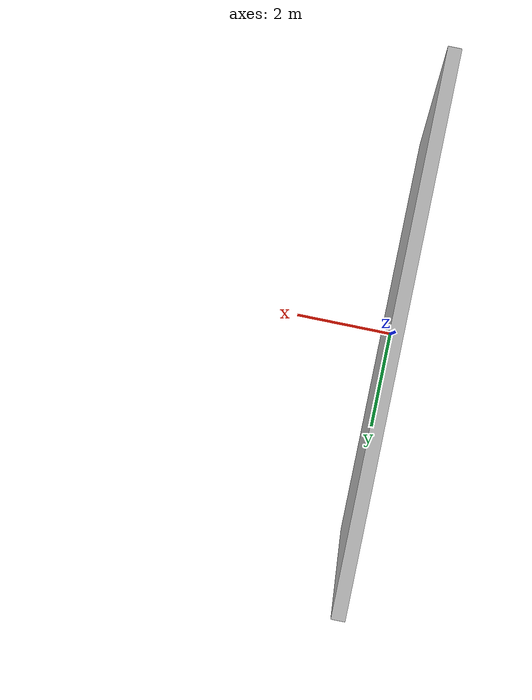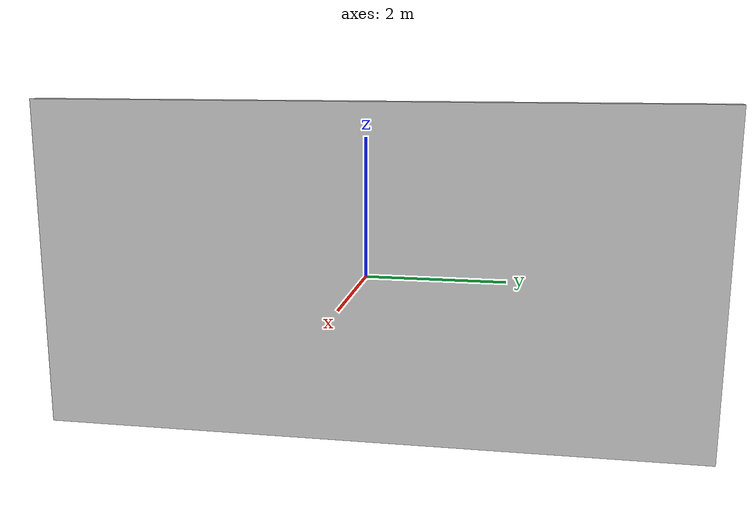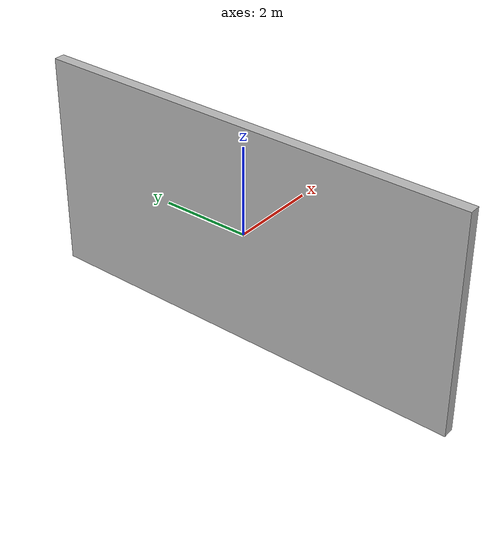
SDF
<?xml version="1.0" encoding="UTF-8"?>
<sdf version="1.7">
  <model name="wall">
    <static>true</static>
    <link name="base_link">
      <collision name="wall_collision">
        <pose>0 0 0 0 0 0</pose>
        <geometry>
          <box>
            <size>0.25 10 5</size>
          </box>
        </geometry>
      </collision>
      <visual name="wall_visual">
        <pose>0 0 0 0 0 0</pose>
        <geometry>
          <box>
            <size>0.25 10 5</size>
          </box>
        </geometry>
        <material>
          <script>
            <name>Gazebo/Steps</name>
            <uri>file://media/materials/scripts/gazebo.material</uri>
          </script>
        </material>
      </visual>
    </link>
  </model>
</sdf>
